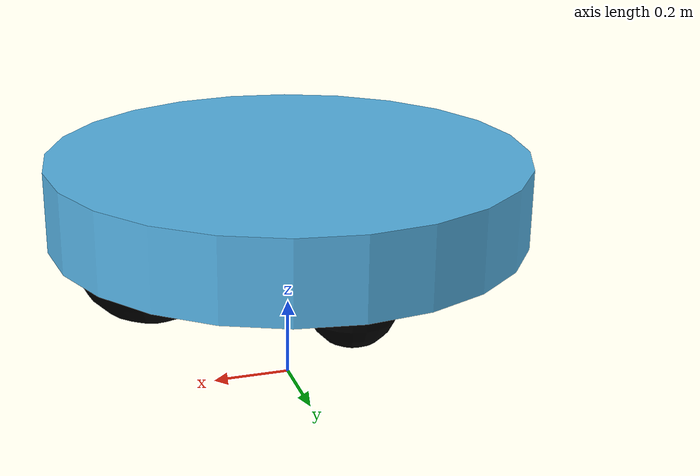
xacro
<?xml version="1.0"?>
<robot xmlns:xacro="http://www.ros.org/wiki/xacro" name="diff_drive_robot">

    <xacro:arg name="chassis_radius" default="0.6" />

    <material name="black">
        <color rgba="0 0 0 1"/>
    </material>

    <link name="base_link" />

    <link name="robot_chassis">
        <visual>
            <geometry>
                <cylinder length="0.2" radius="$(arg chassis_radius)"/>
            </geometry>
        </visual>
    </link>
    <joint name="robot_chassis_joint" type="fixed">
        <parent link="base_link"/>
        <child link="robot_chassis"/>
        <origin xyz="0 0 0.5"/>
    </joint>

    <link name="right_wheel">
        <visual>
            <geometry>
                <sphere radius="0.2"/>
            </geometry>
            <material name="black"/>
        </visual>
    </link>
    <joint name="right_wheel_joint" type="continuous">
        <parent link="robot_chassis"/>
        <child link="right_wheel"/>
        <origin xyz="0.35 0 -0.1"/>
        <axis xyz="1 0 0"/>
    </joint>

    <link name="left_wheel">
        <visual>
            <geometry>
                <sphere radius="0.2"/>
            </geometry>
            <material name="black"/>
        </visual>
    </link>
    <joint name="left_wheel_joint" type="continuous">
        <parent link="robot_chassis"/>
        <child link="left_wheel"/>
        <origin xyz="-0.35 0 -0.1"/>
        <axis xyz="1 0 0"/>
    </joint>

    <link name="front_roller">
        <visual>
            <geometry>
                <sphere radius="0.1" />
            </geometry>
            <material name="black"/>
        </visual>
    </link>
    <joint name="front_roller_joint" type="fixed">
        <parent link="robot_chassis"/>
        <child link="front_roller"/>
        <origin xyz="0 0.5 -0.09"/>
    </joint>

    <link name="back_roller">
        <visual>
            <geometry>
                <sphere radius="0.1" />
            </geometry>
            <material name="black"/>
        </visual>
    </link>
    <joint name="back_roller_joint" type="fixed">
        <parent link="robot_chassis"/>
        <child link="back_roller"/>
        <origin xyz="0 -0.5 -0.09"/>
    </joint>

</robot>
